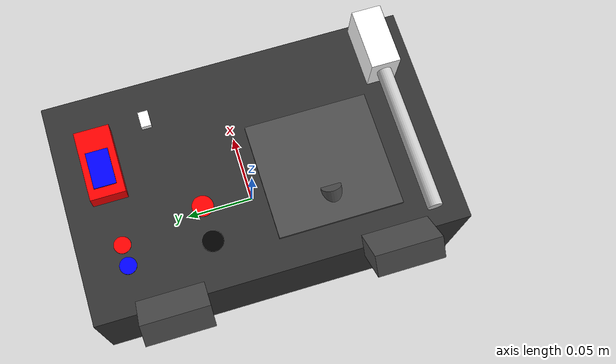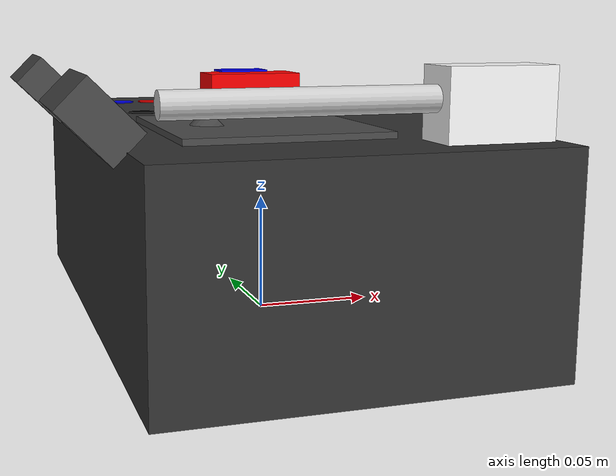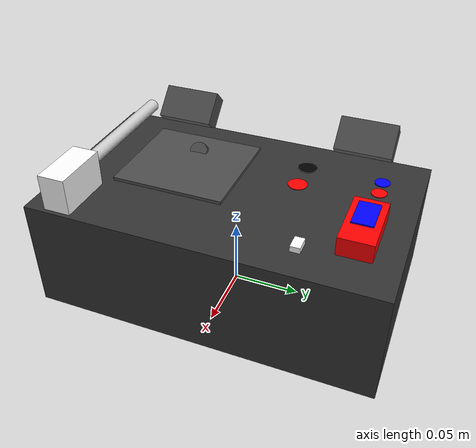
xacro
<?xml version='1.0' encoding='utf-8'?>
<robot xmlns:xacro="http://www.ros.org/wiki/xacro" name="task_board">

    <link name="world"/>
    <!-- Include Gazebo properties -->
    <xacro:include filename="$(find robothon_2023_board_description)/urdf/task_board.gazebo.xacro"/>

    <!-- Define the task_board macro -->
    <xacro:macro name="task_board" params="board_id height prefix">

        <!-- Base link for the task board -->
        <link name="${board_id}_base_link"/>

        <!-- Fixed joint to connect the task board to the world -->
        <joint name="${board_id}_to_world" type="fixed">
            <parent link="world"/>
            <child link="${board_id}_base_link"/>
            <origin xyz="0 0 0" rpy="0 0 0"/>
        </joint>

        <joint name="${board_id}_box_joint" type="fixed">
            <origin xyz="0 0 ${height/2}" rpy="0 0 0"/>
            <parent link="${board_id}_base_link"/>
            <child link="${board_id}_box_link"/>
        </joint>

        <link name="${board_id}_box_link">
            <inertial>
                <origin xyz="0 0 0" rpy="0 0 0"/>
                <mass value="2.0"/>
                <inertia ixx="0.3" ixy="0.0" ixz="0.0" iyy="0.3" iyz="0.0" izz="0.3"/>
            </inertial>
            <visual>
                <origin xyz="0 0 0" rpy="0 0 0"/>
                <geometry>
                    <box size="0.1535 0.254 ${height}"/>
                </geometry>
                <material name="">
                    <color rgba="0.2 0.2 0.2 1"/>
                </material>
            </visual>
            <collision>
                <origin xyz="0 0 0" rpy="0 0 0"/>
                <geometry>
                    <box size="0.1535 0.254 ${height}"/>
                </geometry>
            </collision>
        </link>

        <!-- Red and blue buttons -->
        <joint name="${board_id}_red_button_joint" type="fixed">
            <origin xyz="-0.0304 0.0967 ${height}" rpy="${pi} 0 0"/>
            <parent link="${board_id}_base_link"/>
            <child link="${board_id}_red_button_link"/>
        </joint>

        <link name="${board_id}_red_button_link">
            <inertial>
                <origin xyz="0 0 0" rpy="0 0 0"/>
                <mass value="0.1"/>
                <inertia ixx="0.3" ixy="0.0" ixz="0.0" iyy="0.3" iyz="0.0" izz="0.3"/>
            </inertial>
            <visual>
                <origin xyz="0 0 0" rpy="0 0 0"/>
                <geometry>
                    <cylinder radius="0.00575" length="0.001"/>
                </geometry>
                <material name="">
                    <color rgba="1 0 0 1"/>
                </material>
            </visual>
            <collision>
                <origin xyz="0 0 0" rpy="0 0 0"/>
                <geometry>
                    <cylinder radius="0.00575" length="0.001"/>
                </geometry>
            </collision>
        </link>

        <joint name="${board_id}_blue_button_joint" type="fixed">
            <origin xyz="-0.0447 0.0964 ${height}" rpy="${pi} 0 0"/>
            <parent link="${board_id}_base_link"/>
            <child link="${board_id}_blue_button_link"/>
        </joint>

        <link name="${board_id}_blue_button_link">
            <inertial>
                <origin xyz="0 0 0" rpy="0 0 0"/>
                <mass value="0.1"/>
                <inertia ixx="0.3" ixy="0.0" ixz="0.0" iyy="0.3" iyz="0.0" izz="0.3"/>
            </inertial>
            <visual>
                <origin xyz="0 0 0" rpy="0 0 0"/>
                <geometry>
                    <cylinder radius="0.00575" length="0.001"/>
                </geometry>
                <material name="">
                    <color rgba="0 0 1 1"/>
                </material>
            </visual>
            <collision>
                <origin xyz="0 0 0" rpy="0 0 0"/>
                <geometry>
                    <cylinder radius="0.00575" length="0.001"/>
                </geometry>
            </collision>
        </link>

        <!-- Slider -->
        <joint name="${board_id}_starting_slider_joint" type="fixed">
            <origin xyz="0.049 0.0610 ${height}" rpy="${pi} 0 ${pi/2}"/>
            <parent link="${board_id}_base_link"/>
            <child link="${board_id}_starting_slider_link"/>
        </joint>

        <link name="${board_id}_starting_slider_link">
            <inertial>
                <origin xyz="0 0 0" rpy="0 0 0"/>
                <mass value="0.1"/>
                <inertia ixx="0.3" ixy="0.0" ixz="0.0" iyy="0.3" iyz="0.0" izz="0.3"/>
            </inertial>
            <visual>
                <origin xyz="0 0 0" rpy="${-pi} 0 ${-pi/2}"/>
                <geometry>
                    <box size="0.0112 0.007 0.0085"/>
                </geometry>
                <material name="">
                    <color rgba="1 1 1 1"/>
                </material>
            </visual>
            <collision>
                <origin xyz="0 0 0" rpy="${-pi} 0 ${-pi/2}"/>
                <geometry>
                    <box size="0.0112 0.007 0.0085"/>
                </geometry>
            </collision>
        </link>

        <!-- M5 display -->
        <joint name="${board_id}_m5_display_joint" type="fixed">
            <origin xyz="${0.0239-0.00815} 0.0966 ${height+0.015}" rpy="0 0 0"/>
            <parent link="${board_id}_base_link"/>
            <child link="${board_id}_m5_display_link"/>
        </joint>

        <link name="${board_id}_m5_display_link">
            <inertial>
                <origin xyz="0 0 0" rpy="0 0 0"/>
                <mass value="0.1"/>
                <inertia ixx="0.3" ixy="0.0" ixz="0.0" iyy="0.3" iyz="0.0" izz="0.3"/>
            </inertial>
            <visual>
                <origin xyz="0.00815 0 -0.0075" rpy="0 0 0"/>
                <geometry>
                    <box size="0.048 0.0238 0.0135"/>
                </geometry>
                <material name="">
                    <color rgba="1 0 0 1"/>
                </material>
            </visual>
            <collision>
                <origin xyz="0.00815 0 -0.0075" rpy="0 0 0"/>
                <geometry>
                    <box size="0.048 0.0238 0.0135"/>
                </geometry>
            </collision>
        </link>

        <joint name="${board_id}_m5_blue_display_joint" type="fixed">
            <origin xyz="-0.005 0 0.008" rpy="0 0 0"/>
            <parent link="${board_id}_m5_display_link"/>
            <child link="${board_id}_m5_blue_display_link"/>
        </joint>

        <link name="${board_id}_m5_blue_display_link">
            <inertial>
                <origin xyz="0 0 0" rpy="0 0 0"/>
                <mass value="0.1"/>
                <inertia ixx="0.3" ixy="0.0" ixz="0.0" iyy="0.3" iyz="0.0" izz="0.3"/>
            </inertial>
            <visual>
                <origin xyz="0.00815 0 -0.0075" rpy="0 0 0"/>
                <geometry>
                    <box size="0.025 0.015 0.001"/>
                </geometry>
                <material name="">
                    <color rgba="0 0 1 1"/>
                </material>
            </visual>
            <collision>
                <origin xyz="0.00815 0 -0.0075" rpy="0 0 0"/>
                <geometry>
                    <box size="0.025 0.015 0.005"/>
                </geometry>
            </collision>
        </link>

        <!-- Probe connectors hole -->
        <joint name="${board_id}_starting_connector_joint" type="fixed">
            <origin xyz="-0.0445 0.0398 ${height}" rpy="${pi} 0 0"/>
            <parent link="${board_id}_base_link"/>
            <child link="${board_id}_starting_connector_hole_link"/>
        </joint>

        <link name="${board_id}_starting_connector_hole_link">
            <inertial>
                <origin xyz="0 0 0" rpy="0 0 0"/>
                <mass value="0.1"/>
                <inertia ixx="0.3" ixy="0.0" ixz="0.0" iyy="0.3" iyz="0.0" izz="0.3"/>
            </inertial>
            <visual>
                <origin xyz="0 0 0" rpy="0 0 0"/>
                <geometry>
                    <cylinder radius="0.00725" length="0.001"/>
                </geometry>
                <material name="">
                    <color rgba="0 0 0 1"/>
                </material>
            </visual>
            <collision>
                <origin xyz="0 0 0" rpy="0 0 0"/>
                <geometry>
                    <cylinder radius="0.00725" length="0.001"/>
                </geometry>
            </collision>
        </link>

        <joint name="${board_id}_ending_connector_hole_joint" type="fixed">
            <origin xyz="-0.02 0.0398 ${height}" rpy="${pi} 0 -${pi/4 + pi/24 + pi/96}"/> <!-- 45 + 7.5 + 1.875 to stow the cable btw left reel and blue button -->
            <parent link="${board_id}_base_link"/>
            <child link="${board_id}_ending_connector_hole_link"/>
        </joint>

        <link name="${board_id}_ending_connector_hole_link">
            <inertial>
                <origin xyz="0 0 0" rpy="0 0 0"/>
                <mass value="0.1"/>
                <inertia ixx="0.3" ixy="0.0" ixz="0.0" iyy="0.3" iyz="0.0" izz="0.3"/>
            </inertial>
            <visual>
                <origin xyz="0 0 0" rpy="0 0 0"/>
                <geometry>
                    <cylinder radius="0.00725" length="0.001"/>
                </geometry>
                <material name="">
                    <color rgba="1 0 0 1"/>
                </material>
            </visual>
            <collision>
                <origin xyz="0 0 0" rpy="0 0 0"/>
                <geometry>
                    <cylinder radius="0.00725" length="0.001"/>
                </geometry>
            </collision>
        </link>

        <!-- Door -->
        <joint name="${board_id}_door_joint" type="fixed">
            <origin xyz="-0.0157 -0.0445 ${height}" rpy="0 0 0"/>
            <parent link="${board_id}_base_link"/>
            <child link="${board_id}_door_link"/>
        </joint>

        <link name="${board_id}_door_link">
            <inertial>
                <origin xyz="0 0 0" rpy="0 0 0"/>
                <mass value="0.1"/>
                <inertia ixx="0.3" ixy="0.0" ixz="0.0" iyy="0.3" iyz="0.0" izz="0.3"/>
            </inertial>
            <visual>
                <origin xyz="0 0 0" rpy="0 0 0"/>
                <geometry>
                    <box size="0.08 0.085 0.005"/>
                </geometry>
                <material name="">
                    <color rgba="0.3 0.3 0.3 1"/>
                </material>
            </visual>
            <collision>
                <origin xyz="0 0 0" rpy="0 0 0"/>
                <geometry>
                    <box size="0.08 0.085 0.005"/>
                </geometry>
            </collision>
        </link>

        <joint name="${board_id}_door_handle_joint" type="fixed">
            <origin xyz="-0.0198 0 0" rpy="0 ${pi} ${pi}"/>
            <parent link="${board_id}_door_link"/>
            <child link="${board_id}_door_handle_link"/>
        </joint>

        <link name="${board_id}_door_handle_link">
            <inertial>
                <origin xyz="0 0 0" rpy="0 0 0"/>
                <mass value="0.1"/>
                <inertia ixx="0.3" ixy="0.0" ixz="0.0" iyy="0.3" iyz="0.0" izz="0.3"/>
            </inertial>
            <visual>
                <origin xyz="0 0 0" rpy="0 ${-pi/4} 0"/>
                <geometry>
                    <cylinder radius="0.007" length="0.01"/>
                </geometry>
                <material name="">
                    <color rgba="0.3 0.3 0.3 1"/>
                </material>
            </visual>
            <collision>
                <origin xyz="0 0 0" rpy="0 ${-pi/4} 0"/>
                <geometry>
                    <cylinder radius="0.007" length="0.01"/>
                </geometry>
            </collision>
        </link>

        <joint name="${board_id}_door_center_of_rotation_joint" type="fixed">
            <origin xyz="${0.04+0.005} 0 0" rpy="${-pi/2} 0 0"/>
            <parent link="${board_id}_door_link"/>
            <child link="${board_id}_door_center_of_rotation_link"/>
        </joint>

        <link name="${board_id}_door_center_of_rotation_link"/>

        <!-- Probe -->
        <joint name="${board_id}_probe_handle_joint" type="fixed">
            <origin xyz="0.0526 -0.102 ${height+0.0135}" rpy="${pi} 0 0"/>
            <parent link="${board_id}_base_link"/>
            <child link="${board_id}_probe_handle_link"/>
        </joint>

        <link name="${board_id}_probe_handle_link">
            <inertial>
                <origin xyz="0 0 0" rpy="0 0 0"/>
                <mass value="0.1"/>
                <inertia ixx="0.3" ixy="0.0" ixz="0.0" iyy="0.3" iyz="0.0" izz="0.3"/>
            </inertial>
            <visual>
                <origin xyz="0 0 0" rpy="0 0 0"/>
                <geometry>
                    <box size="0.042 0.02 0.027"/>
                </geometry>
                <material name="">
                    <color rgba="1 1 1 1"/>
                </material>
            </visual>
            <collision>
                <origin xyz="0 0 0" rpy="0 0 0"/>
                <geometry>
                    <box size="0.042 0.02 0.027"/>
                </geometry>
            </collision>
        </link>

        <joint name="${board_id}_probe_joint" type="fixed">
            <origin xyz="-0.07 0 -0.002" rpy="0 ${pi/2} 0"/>
            <parent link="${board_id}_probe_handle_link"/>
            <child link="${board_id}_probe_link"/>
        </joint>

        <link name="${board_id}_probe_link">
            <inertial>
                <origin xyz="0 0 0" rpy="0 0 0"/>
                <mass value="0.1"/>
                <inertia ixx="0.3" ixy="0.0" ixz="0.0" iyy="0.3" iyz="0.0" izz="0.3"/>
            </inertial>
            <visual>
                <origin xyz="0 0 0" rpy="0 0 0"/>
                <geometry>
                    <cylinder radius="0.005" length="0.1"/>
                </geometry>
                <material name="">
                    <color rgba="0.8 0.8 0.8 1"/>
                </material>
            </visual>
            <collision>
                <origin xyz="0 0 0" rpy="0 0 0"/>
                <geometry>
                    <cylinder radius="0.005" length="0.1"/>
                </geometry>
            </collision>
        </link>

        <joint name="${board_id}_circuit_to_probe_joint" type="fixed">
            <origin xyz="0.025 -0.003 0" rpy="${pi} 0 0"/>
            <parent link="${board_id}_door_link"/>
            <child link="${board_id}_circuit_to_probe_link"/>
        </joint>

        <link name="${board_id}_circuit_to_probe_link"/>

        <!-- Wire reels -->
        <joint name="${board_id}_left_wire_reel_joint" type="fixed">
            <origin xyz="-0.085 0.075 ${height+0.01}" rpy="0 ${pi/4} 0"/>
            <parent link="${board_id}_base_link"/>
            <child link="${board_id}_left_wire_reel_link"/>
        </joint>

        <link name="${board_id}_left_wire_reel_link">
            <inertial>
                <origin xyz="0 0 0" rpy="0 0 0"/>
                <mass value="0.1"/>
                <inertia ixx="0.3" ixy="0.0" ixz="0.0" iyy="0.3" iyz="0.0" izz="0.3"/>
            </inertial>
            <visual>
                <origin xyz="0 0 0" rpy="0 0 0"/>
                <geometry>
                    <box size="0.027 0.045 0.016"/>
                </geometry>
                <material name="">
                    <color rgba="0.3 0.3 0.3 1"/>
                </material>
            </visual>
            <collision>
                <origin xyz="0 0 0" rpy="0 0 0"/>
                <geometry>
                    <box size="0.027 0.045 0.016"/>
                </geometry>
            </collision>
        </link>

        <joint name="${board_id}_right_wire_reel_joint" type="fixed">
            <origin xyz="-0.085 -0.075 ${height+0.01}" rpy="0 ${pi/4} 0"/>
            <parent link="${board_id}_base_link"/>
            <child link="${board_id}_right_wire_reel_link"/>
        </joint>

        <link name="${board_id}_right_wire_reel_link">
            <inertial>
                <origin xyz="0 0 0" rpy="0 0 0"/>
                <mass value="0.1"/>
                <inertia ixx="0.3" ixy="0.0" ixz="0.0" iyy="0.3" iyz="0.0" izz="0.3"/>
            </inertial>
            <visual>
                <origin xyz="0 0 0" rpy="0 0 0"/>
                <geometry>
                    <box size="0.027 0.045 0.016"/>
                </geometry>
                <material name="">
                    <color rgba="0.3 0.3 0.3 1"/>
                </material>
            </visual>
            <collision>
                <origin xyz="0 0 0" rpy="0 0 0"/>
                <geometry>
                    <box size="0.027 0.045 0.016"/>
                </geometry>
            </collision>
        </link>
    </xacro:macro>

    <!-- Invoke the task_board macro -->
    <xacro:task_board board_id="task_board" height="0.085" prefix=""/>

</robot>
